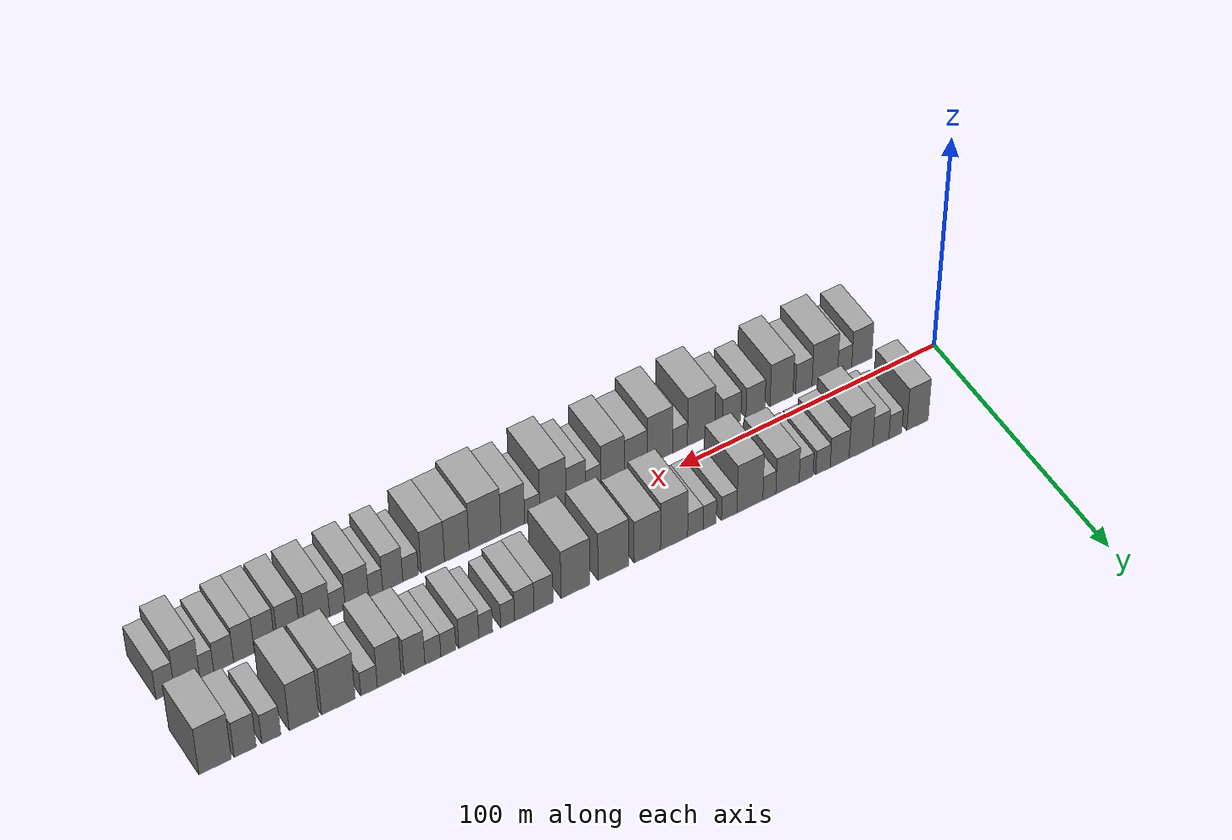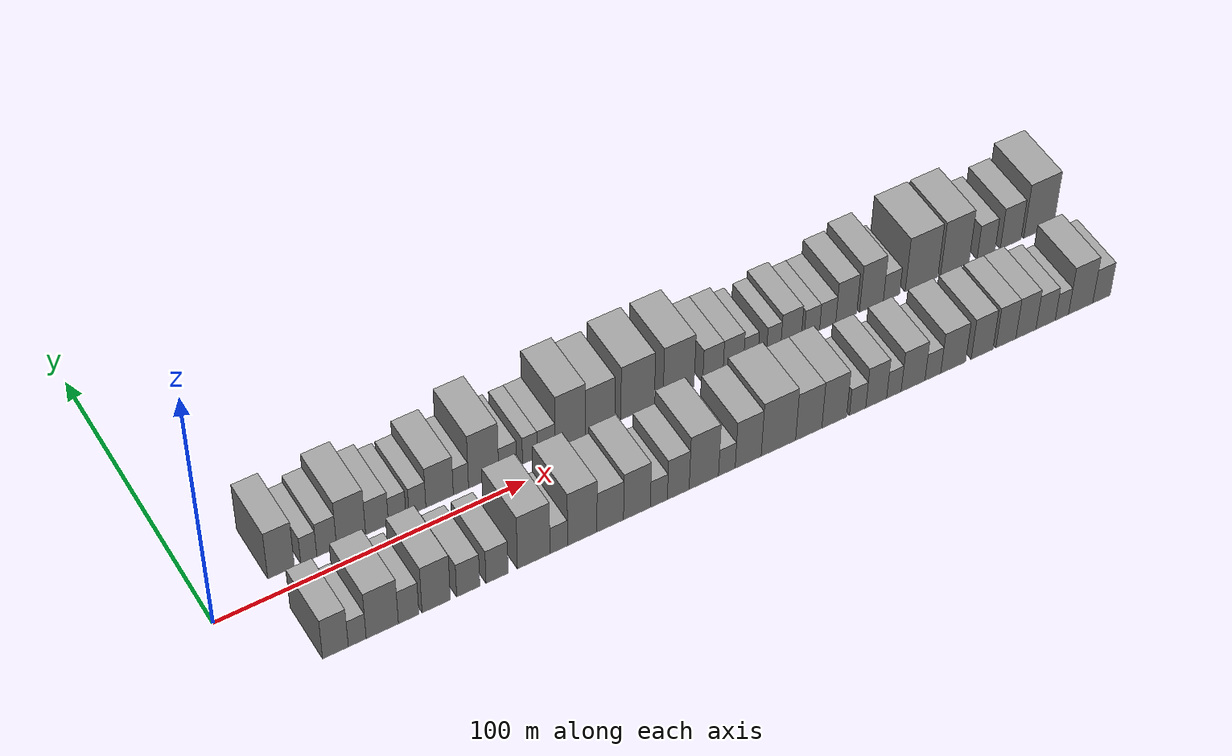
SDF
<sdf version="1.6">
 <world name="default">
  <scene>
   <sky><clouds><speed>12</speed></clouds></sky>
   <ambient>0.4 0.4 0.4 1</ambient>
   <background>0.7 0.7 0.7 1</background>
   <shadows>1</shadows>
  </scene>
  <gravity>0 0 -9.8066</gravity>
  <magnetic_field>6e-06 2.3e-05 -4.2e-05</magnetic_field>
  <physics default="0" name="default_physics" type="ode">
   <ode>
    <solver>
     <type>quick</type>
     <iters>10</iters>
     <sor>1.0</sor>
     <use_dynamic_moi_rescaling>0</use_dynamic_moi_rescaling>
    </solver>
    <constraints>
     <cfm>0</cfm>
     <erp>0.2</erp>
     <contact_max_correcting_vel>100</contact_max_correcting_vel>
     <contact_surface_layer>0.001</contact_surface_layer>
    </constraints>
   </ode>
   <max_step_size>0.004</max_step_size>
   <real_time_factor>1</real_time_factor>
   <real_time_update_rate>250</real_time_update_rate>
  </physics>
  <light name="sun" type="directional">
   <pose>0 0 10 0 0 0</pose>
   <diffuse>0.8 0.8 0.8 1</diffuse>
   <specular>0.2 0.2 0.2 1</specular>
   <attenuation>
    <range>1000</range>
    <constant>0.9</constant>
    <linear>0.01</linear>
    <quadratic>0.001</quadratic>
   </attenuation>
   <direction>-0.5 0.1 -0.9</direction>
  </light>
  <model name="building_1">
   <static>1</static>
   <pose>24.2161 16.0000 0 0.000000 0.000000 1.570796</pose>
   <link name="link">
    <pose>0 0 10.50 0 0 0</pose>
    <collision name="collision"><geometry><box><size>20.0000 8.4322 21.0000</size></box></geometry></collision>
    <visual name="visual">
     <cast_shadows>0</cast_shadows>
     <geometry><box><size>20.0000 8.4322 21.0000</size></box></geometry>
     <material>
      <script>
       <uri>model://grey_wall/materials/scripts</uri>
       <uri>model://grey_wall/materials/textures</uri>
       <name>vrc/grey_wall</name>
      </script>
     </material>
    </visual>
   </link>
  </model>
  <model name="building_2">
   <static>1</static>
   <pose>32.9692 16.0000 0 0.000000 0.000000 1.570796</pose>
   <link name="link">
    <pose>0 0 6.00 0 0 0</pose>
    <collision name="collision"><geometry><box><size>20.0000 5.0739 12.0000</size></box></geometry></collision>
    <visual name="visual">
     <cast_shadows>0</cast_shadows>
     <geometry><box><size>20.0000 5.0739 12.0000</size></box></geometry>
     <material>
      <script>
       <uri>model://grey_wall/materials/scripts</uri>
       <uri>model://grey_wall/materials/textures</uri>
       <name>vrc/grey_wall</name>
      </script>
     </material>
    </visual>
   </link>
  </model>
  <model name="building_3">
   <static>1</static>
   <pose>38.6626 16.0000 0 0.000000 0.000000 1.570796</pose>
   <link name="link">
    <pose>0 0 7.50 0 0 0</pose>
    <collision name="collision"><geometry><box><size>20.0000 6.3130 15.0000</size></box></geometry></collision>
    <visual name="visual">
     <cast_shadows>0</cast_shadows>
     <geometry><box><size>20.0000 6.3130 15.0000</size></box></geometry>
     <material>
      <script>
       <uri>model://grey_wall/materials/scripts</uri>
       <uri>model://grey_wall/materials/textures</uri>
       <name>vrc/grey_wall</name>
      </script>
     </material>
    </visual>
   </link>
  </model>
  <model name="building_4">
   <static>1</static>
   <pose>46.4563 16.0000 0 0.000000 0.000000 1.570796</pose>
   <link name="link">
    <pose>0 0 10.50 0 0 0</pose>
    <collision name="collision"><geometry><box><size>20.0000 9.2744 21.0000</size></box></geometry></collision>
    <visual name="visual">
     <cast_shadows>0</cast_shadows>
     <geometry><box><size>20.0000 9.2744 21.0000</size></box></geometry>
     <material>
      <script>
       <uri>model://grey_wall/materials/scripts</uri>
       <uri>model://grey_wall/materials/textures</uri>
       <name>vrc/grey_wall</name>
      </script>
     </material>
    </visual>
   </link>
  </model>
  <model name="building_5">
   <static>1</static>
   <pose>54.7724 16.0000 0 0.000000 0.000000 1.570796</pose>
   <link name="link">
    <pose>0 0 7.50 0 0 0</pose>
    <collision name="collision"><geometry><box><size>20.0000 7.3577 15.0000</size></box></geometry></collision>
    <visual name="visual">
     <cast_shadows>0</cast_shadows>
     <geometry><box><size>20.0000 7.3577 15.0000</size></box></geometry>
     <material>
      <script>
       <uri>model://grey_wall/materials/scripts</uri>
       <uri>model://grey_wall/materials/textures</uri>
       <name>vrc/grey_wall</name>
      </script>
     </material>
    </visual>
   </link>
  </model>
  <model name="building_6">
   <static>1</static>
   <pose>61.2709 16.0000 0 0.000000 0.000000 1.570796</pose>
   <link name="link">
    <pose>0 0 6.00 0 0 0</pose>
    <collision name="collision"><geometry><box><size>20.0000 5.6394 12.0000</size></box></geometry></collision>
    <visual name="visual">
     <cast_shadows>0</cast_shadows>
     <geometry><box><size>20.0000 5.6394 12.0000</size></box></geometry>
     <material>
      <script>
       <uri>model://grey_wall/materials/scripts</uri>
       <uri>model://grey_wall/materials/textures</uri>
       <name>vrc/grey_wall</name>
      </script>
     </material>
    </visual>
   </link>
  </model>
  <model name="building_7">
   <static>1</static>
   <pose>67.8159 16.0000 0 0.000000 0.000000 1.570796</pose>
   <link name="link">
    <pose>0 0 6.00 0 0 0</pose>
    <collision name="collision"><geometry><box><size>20.0000 5.4505 12.0000</size></box></geometry></collision>
    <visual name="visual">
     <cast_shadows>0</cast_shadows>
     <geometry><box><size>20.0000 5.4505 12.0000</size></box></geometry>
     <material>
      <script>
       <uri>model://grey_wall/materials/scripts</uri>
       <uri>model://grey_wall/materials/textures</uri>
       <name>vrc/grey_wall</name>
      </script>
     </material>
    </visual>
   </link>
  </model>
  <model name="building_8">
   <static>1</static>
   <pose>75.0235 16.0000 0 0.000000 0.000000 1.570796</pose>
   <link name="link">
    <pose>0 0 9.00 0 0 0</pose>
    <collision name="collision"><geometry><box><size>20.0000 8.9648 18.0000</size></box></geometry></collision>
    <visual name="visual">
     <cast_shadows>0</cast_shadows>
     <geometry><box><size>20.0000 8.9648 18.0000</size></box></geometry>
     <material>
      <script>
       <uri>model://grey_wall/materials/scripts</uri>
       <uri>model://grey_wall/materials/textures</uri>
       <name>vrc/grey_wall</name>
      </script>
     </material>
    </visual>
   </link>
  </model>
  <model name="building_9">
   <static>1</static>
   <pose>82.0017 16.0000 0 0.000000 0.000000 1.570796</pose>
   <link name="link">
    <pose>0 0 6.00 0 0 0</pose>
    <collision name="collision"><geometry><box><size>20.0000 4.9915 12.0000</size></box></geometry></collision>
    <visual name="visual">
     <cast_shadows>0</cast_shadows>
     <geometry><box><size>20.0000 4.9915 12.0000</size></box></geometry>
     <material>
      <script>
       <uri>model://grey_wall/materials/scripts</uri>
       <uri>model://grey_wall/materials/textures</uri>
       <name>vrc/grey_wall</name>
      </script>
     </material>
    </visual>
   </link>
  </model>
  <model name="building_10">
   <static>1</static>
   <pose>89.4629 16.0000 0 0.000000 0.000000 1.570796</pose>
   <link name="link">
    <pose>0 0 12.00 0 0 0</pose>
    <collision name="collision"><geometry><box><size>20.0000 9.9310 24.0000</size></box></geometry></collision>
    <visual name="visual">
     <cast_shadows>0</cast_shadows>
     <geometry><box><size>20.0000 9.9310 24.0000</size></box></geometry>
     <material>
      <script>
       <uri>model://grey_wall/materials/scripts</uri>
       <uri>model://grey_wall/materials/textures</uri>
       <name>vrc/grey_wall</name>
      </script>
     </material>
    </visual>
   </link>
  </model>
  <model name="building_11">
   <static>1</static>
   <pose>97.3649 16.0000 0 0.000000 0.000000 1.570796</pose>
   <link name="link">
    <pose>0 0 6.00 0 0 0</pose>
    <collision name="collision"><geometry><box><size>20.0000 5.8729 12.0000</size></box></geometry></collision>
    <visual name="visual">
     <cast_shadows>0</cast_shadows>
     <geometry><box><size>20.0000 5.8729 12.0000</size></box></geometry>
     <material>
      <script>
       <uri>model://grey_wall/materials/scripts</uri>
       <uri>model://grey_wall/materials/textures</uri>
       <name>vrc/grey_wall</name>
      </script>
     </material>
    </visual>
   </link>
  </model>
  <model name="building_12">
   <static>1</static>
   <pose>104.7525 16.0000 0 0.000000 0.000000 1.570796</pose>
   <link name="link">
    <pose>0 0 6.00 0 0 0</pose>
    <collision name="collision"><geometry><box><size>20.0000 4.9022 12.0000</size></box></geometry></collision>
    <visual name="visual">
     <cast_shadows>0</cast_shadows>
     <geometry><box><size>20.0000 4.9022 12.0000</size></box></geometry>
     <material>
      <script>
       <uri>model://grey_wall/materials/scripts</uri>
       <uri>model://grey_wall/materials/textures</uri>
       <name>vrc/grey_wall</name>
      </script>
     </material>
    </visual>
   </link>
  </model>
  <model name="building_13">
   <static>1</static>
   <pose>110.1874 16.0000 0 0.000000 0.000000 1.570796</pose>
   <link name="link">
    <pose>0 0 6.00 0 0 0</pose>
    <collision name="collision"><geometry><box><size>20.0000 5.9677 12.0000</size></box></geometry></collision>
    <visual name="visual">
     <cast_shadows>0</cast_shadows>
     <geometry><box><size>20.0000 5.9677 12.0000</size></box></geometry>
     <material>
      <script>
       <uri>model://grey_wall/materials/scripts</uri>
       <uri>model://grey_wall/materials/textures</uri>
       <name>vrc/grey_wall</name>
      </script>
     </material>
    </visual>
   </link>
  </model>
  <model name="building_14">
   <static>1</static>
   <pose>118.2774 16.0000 0 0.000000 0.000000 1.570796</pose>
   <link name="link">
    <pose>0 0 12.00 0 0 0</pose>
    <collision name="collision"><geometry><box><size>20.0000 10.2123 24.0000</size></box></geometry></collision>
    <visual name="visual">
     <cast_shadows>0</cast_shadows>
     <geometry><box><size>20.0000 10.2123 24.0000</size></box></geometry>
     <material>
      <script>
       <uri>model://grey_wall/materials/scripts</uri>
       <uri>model://grey_wall/materials/textures</uri>
       <name>vrc/grey_wall</name>
      </script>
     </material>
    </visual>
   </link>
  </model>
  <model name="building_15">
   <static>1</static>
   <pose>128.3122 16.0000 0 0.000000 0.000000 1.570796</pose>
   <link name="link">
    <pose>0 0 10.50 0 0 0</pose>
    <collision name="collision"><geometry><box><size>20.0000 9.8573 21.0000</size></box></geometry></collision>
    <visual name="visual">
     <cast_shadows>0</cast_shadows>
     <geometry><box><size>20.0000 9.8573 21.0000</size></box></geometry>
     <material>
      <script>
       <uri>model://grey_wall/materials/scripts</uri>
       <uri>model://grey_wall/materials/textures</uri>
       <name>vrc/grey_wall</name>
      </script>
     </material>
    </visual>
   </link>
  </model>
  <model name="building_16">
   <static>1</static>
   <pose>140.9655 16.0000 0 0.000000 0.000000 1.570796</pose>
   <link name="link">
    <pose>0 0 12.00 0 0 0</pose>
    <collision name="collision"><geometry><box><size>20.0000 11.4492 24.0000</size></box></geometry></collision>
    <visual name="visual">
     <cast_shadows>0</cast_shadows>
     <geometry><box><size>20.0000 11.4492 24.0000</size></box></geometry>
     <material>
      <script>
       <uri>model://grey_wall/materials/scripts</uri>
       <uri>model://grey_wall/materials/textures</uri>
       <name>vrc/grey_wall</name>
      </script>
     </material>
    </visual>
   </link>
  </model>
  <model name="building_17">
   <static>1</static>
   <pose>155.0265 16.0000 0 0.000000 0.000000 1.570796</pose>
   <link name="link">
    <pose>0 0 12.00 0 0 0</pose>
    <collision name="collision"><geometry><box><size>20.0000 10.6728 24.0000</size></box></geometry></collision>
    <visual name="visual">
     <cast_shadows>0</cast_shadows>
     <geometry><box><size>20.0000 10.6728 24.0000</size></box></geometry>
     <material>
      <script>
       <uri>model://grey_wall/materials/scripts</uri>
       <uri>model://grey_wall/materials/textures</uri>
       <name>vrc/grey_wall</name>
      </script>
     </material>
    </visual>
   </link>
  </model>
  <model name="building_18">
   <static>1</static>
   <pose>166.8711 16.0000 0 0.000000 0.000000 1.570796</pose>
   <link name="link">
    <pose>0 0 7.50 0 0 0</pose>
    <collision name="collision"><geometry><box><size>20.0000 7.0164 15.0000</size></box></geometry></collision>
    <visual name="visual">
     <cast_shadows>0</cast_shadows>
     <geometry><box><size>20.0000 7.0164 15.0000</size></box></geometry>
     <material>
      <script>
       <uri>model://grey_wall/materials/scripts</uri>
       <uri>model://grey_wall/materials/textures</uri>
       <name>vrc/grey_wall</name>
      </script>
     </material>
    </visual>
   </link>
  </model>
  <model name="building_19">
   <static>1</static>
   <pose>173.9397 16.0000 0 0.000000 0.000000 1.570796</pose>
   <link name="link">
    <pose>0 0 7.50 0 0 0</pose>
    <collision name="collision"><geometry><box><size>20.0000 7.1207 15.0000</size></box></geometry></collision>
    <visual name="visual">
     <cast_shadows>0</cast_shadows>
     <geometry><box><size>20.0000 7.1207 15.0000</size></box></geometry>
     <material>
      <script>
       <uri>model://grey_wall/materials/scripts</uri>
       <uri>model://grey_wall/materials/textures</uri>
       <name>vrc/grey_wall</name>
      </script>
     </material>
    </visual>
   </link>
  </model>
  <model name="building_20">
   <static>1</static>
   <pose>180.0243 16.0000 0 0.000000 0.000000 1.570796</pose>
   <link name="link">
    <pose>0 0 6.00 0 0 0</pose>
    <collision name="collision"><geometry><box><size>20.0000 5.0486 12.0000</size></box></geometry></collision>
    <visual name="visual">
     <cast_shadows>0</cast_shadows>
     <geometry><box><size>20.0000 5.0486 12.0000</size></box></geometry>
     <material>
      <script>
       <uri>model://grey_wall/materials/scripts</uri>
       <uri>model://grey_wall/materials/textures</uri>
       <name>vrc/grey_wall</name>
      </script>
     </material>
    </visual>
   </link>
  </model>
  <model name="building_21">
   <static>1</static>
   <pose>188.0584 16.0000 0 0.000000 0.000000 1.570796</pose>
   <link name="link">
    <pose>0 0 6.00 0 0 0</pose>
    <collision name="collision"><geometry><box><size>20.0000 5.0195 12.0000</size></box></geometry></collision>
    <visual name="visual">
     <cast_shadows>0</cast_shadows>
     <geometry><box><size>20.0000 5.0195 12.0000</size></box></geometry>
     <material>
      <script>
       <uri>model://grey_wall/materials/scripts</uri>
       <uri>model://grey_wall/materials/textures</uri>
       <name>vrc/grey_wall</name>
      </script>
     </material>
    </visual>
   </link>
  </model>
  <model name="building_22">
   <static>1</static>
   <pose>194.2041 16.0000 0 0.000000 0.000000 1.570796</pose>
   <link name="link">
    <pose>0 0 7.50 0 0 0</pose>
    <collision name="collision"><geometry><box><size>20.0000 7.2721 15.0000</size></box></geometry></collision>
    <visual name="visual">
     <cast_shadows>0</cast_shadows>
     <geometry><box><size>20.0000 7.2721 15.0000</size></box></geometry>
     <material>
      <script>
       <uri>model://grey_wall/materials/scripts</uri>
       <uri>model://grey_wall/materials/textures</uri>
       <name>vrc/grey_wall</name>
      </script>
     </material>
    </visual>
   </link>
  </model>
  <model name="building_23">
   <static>1</static>
   <pose>201.5783 16.0000 0 0.000000 0.000000 1.570796</pose>
   <link name="link">
    <pose>0 0 6.00 0 0 0</pose>
    <collision name="collision"><geometry><box><size>20.0000 5.4761 12.0000</size></box></geometry></collision>
    <visual name="visual">
     <cast_shadows>0</cast_shadows>
     <geometry><box><size>20.0000 5.4761 12.0000</size></box></geometry>
     <material>
      <script>
       <uri>model://grey_wall/materials/scripts</uri>
       <uri>model://grey_wall/materials/textures</uri>
       <name>vrc/grey_wall</name>
      </script>
     </material>
    </visual>
   </link>
  </model>
  <model name="building_24">
   <static>1</static>
   <pose>207.1888 16.0000 0 0.000000 0.000000 1.570796</pose>
   <link name="link">
    <pose>0 0 6.00 0 0 0</pose>
    <collision name="collision"><geometry><box><size>20.0000 5.7449 12.0000</size></box></geometry></collision>
    <visual name="visual">
     <cast_shadows>0</cast_shadows>
     <geometry><box><size>20.0000 5.7449 12.0000</size></box></geometry>
     <material>
      <script>
       <uri>model://grey_wall/materials/scripts</uri>
       <uri>model://grey_wall/materials/textures</uri>
       <name>vrc/grey_wall</name>
      </script>
     </material>
    </visual>
   </link>
  </model>
  <model name="building_25">
   <static>1</static>
   <pose>213.8096 16.0000 0 0.000000 0.000000 1.570796</pose>
   <link name="link">
    <pose>0 0 9.00 0 0 0</pose>
    <collision name="collision"><geometry><box><size>20.0000 7.4967 18.0000</size></box></geometry></collision>
    <visual name="visual">
     <cast_shadows>0</cast_shadows>
     <geometry><box><size>20.0000 7.4967 18.0000</size></box></geometry>
     <material>
      <script>
       <uri>model://grey_wall/materials/scripts</uri>
       <uri>model://grey_wall/materials/textures</uri>
       <name>vrc/grey_wall</name>
      </script>
     </material>
    </visual>
   </link>
  </model>
  <model name="building_26">
   <static>1</static>
   <pose>222.8315 16.0000 0 0.000000 0.000000 1.570796</pose>
   <link name="link">
    <pose>0 0 10.50 0 0 0</pose>
    <collision name="collision"><geometry><box><size>20.0000 8.5472 21.0000</size></box></geometry></collision>
    <visual name="visual">
     <cast_shadows>0</cast_shadows>
     <geometry><box><size>20.0000 8.5472 21.0000</size></box></geometry>
     <material>
      <script>
       <uri>model://grey_wall/materials/scripts</uri>
       <uri>model://grey_wall/materials/textures</uri>
       <name>vrc/grey_wall</name>
      </script>
     </material>
    </visual>
   </link>
  </model>
  <model name="building_27">
   <static>1</static>
   <pose>230.0566 16.0000 0 0.000000 0.000000 1.570796</pose>
   <link name="link">
    <pose>0 0 6.00 0 0 0</pose>
    <collision name="collision"><geometry><box><size>20.0000 5.9030 12.0000</size></box></geometry></collision>
    <visual name="visual">
     <cast_shadows>0</cast_shadows>
     <geometry><box><size>20.0000 5.9030 12.0000</size></box></geometry>
     <material>
      <script>
       <uri>model://grey_wall/materials/scripts</uri>
       <uri>model://grey_wall/materials/textures</uri>
       <name>vrc/grey_wall</name>
      </script>
     </material>
    </visual>
   </link>
  </model>
  <model name="building_28">
   <static>1</static>
   <pose>240.9556 16.0000 0 0.000000 0.000000 1.570796</pose>
   <link name="link">
    <pose>0 0 12.00 0 0 0</pose>
    <collision name="collision"><geometry><box><size>20.0000 11.8950 24.0000</size></box></geometry></collision>
    <visual name="visual">
     <cast_shadows>0</cast_shadows>
     <geometry><box><size>20.0000 11.8950 24.0000</size></box></geometry>
     <material>
      <script>
       <uri>model://grey_wall/materials/scripts</uri>
       <uri>model://grey_wall/materials/textures</uri>
       <name>vrc/grey_wall</name>
      </script>
     </material>
    </visual>
   </link>
  </model>
  <model name="building_29">
   <static>1</static>
   <pose>253.0894 16.0000 0 0.000000 0.000000 1.570796</pose>
   <link name="link">
    <pose>0 0 12.00 0 0 0</pose>
    <collision name="collision"><geometry><box><size>20.0000 10.3726 24.0000</size></box></geometry></collision>
    <visual name="visual">
     <cast_shadows>0</cast_shadows>
     <geometry><box><size>20.0000 10.3726 24.0000</size></box></geometry>
     <material>
      <script>
       <uri>model://grey_wall/materials/scripts</uri>
       <uri>model://grey_wall/materials/textures</uri>
       <name>vrc/grey_wall</name>
      </script>
     </material>
    </visual>
   </link>
  </model>
  <model name="building_30">
   <static>1</static>
   <pose>264.5663 16.0000 0 0.000000 0.000000 1.570796</pose>
   <link name="link">
    <pose>0 0 7.50 0 0 0</pose>
    <collision name="collision"><geometry><box><size>20.0000 6.5811 15.0000</size></box></geometry></collision>
    <visual name="visual">
     <cast_shadows>0</cast_shadows>
     <geometry><box><size>20.0000 6.5811 15.0000</size></box></geometry>
     <material>
      <script>
       <uri>model://grey_wall/materials/scripts</uri>
       <uri>model://grey_wall/materials/textures</uri>
       <name>vrc/grey_wall</name>
      </script>
     </material>
    </visual>
   </link>
  </model>
  <model name="building_31">
   <static>1</static>
   <pose>273.6921 16.0000 0 0.000000 0.000000 1.570796</pose>
   <link name="link">
    <pose>0 0 9.00 0 0 0</pose>
    <collision name="collision"><geometry><box><size>20.0000 7.6704 18.0000</size></box></geometry></collision>
    <visual name="visual">
     <cast_shadows>0</cast_shadows>
     <geometry><box><size>20.0000 7.6704 18.0000</size></box></geometry>
     <material>
      <script>
       <uri>model://grey_wall/materials/scripts</uri>
       <uri>model://grey_wall/materials/textures</uri>
       <name>vrc/grey_wall</name>
      </script>
     </material>
    </visual>
   </link>
  </model>
  <model name="building_32">
   <static>1</static>
   <pose>284.1521 16.0000 0 0.000000 0.000000 1.570796</pose>
   <link name="link">
    <pose>0 0 12.00 0 0 0</pose>
    <collision name="collision"><geometry><box><size>20.0000 11.2497 24.0000</size></box></geometry></collision>
    <visual name="visual">
     <cast_shadows>0</cast_shadows>
     <geometry><box><size>20.0000 11.2497 24.0000</size></box></geometry>
     <material>
      <script>
       <uri>model://grey_wall/materials/scripts</uri>
       <uri>model://grey_wall/materials/textures</uri>
       <name>vrc/grey_wall</name>
      </script>
     </material>
    </visual>
   </link>
  </model>
  <model name="building_33">
   <static>1</static>
   <pose>25.0130 -16.0000 0 0.000000 0.000000 1.570796</pose>
   <link name="link">
    <pose>0 0 9.00 0 0 0</pose>
    <collision name="collision"><geometry><box><size>20.0000 8.0260 18.0000</size></box></geometry></collision>
    <visual name="visual">
     <cast_shadows>0</cast_shadows>
     <geometry><box><size>20.0000 8.0260 18.0000</size></box></geometry>
     <material>
      <script>
       <uri>model://grey_wall/materials/scripts</uri>
       <uri>model://grey_wall/materials/textures</uri>
       <name>vrc/grey_wall</name>
      </script>
     </material>
    </visual>
   </link>
  </model>
  <model name="building_34">
   <static>1</static>
   <pose>31.8116 -16.0000 0 0.000000 0.000000 1.570796</pose>
   <link name="link">
    <pose>0 0 6.00 0 0 0</pose>
    <collision name="collision"><geometry><box><size>20.0000 5.5711 12.0000</size></box></geometry></collision>
    <visual name="visual">
     <cast_shadows>0</cast_shadows>
     <geometry><box><size>20.0000 5.5711 12.0000</size></box></geometry>
     <material>
      <script>
       <uri>model://grey_wall/materials/scripts</uri>
       <uri>model://grey_wall/materials/textures</uri>
       <name>vrc/grey_wall</name>
      </script>
     </material>
    </visual>
   </link>
  </model>
  <model name="building_35">
   <static>1</static>
   <pose>39.6670 -16.0000 0 0.000000 0.000000 1.570796</pose>
   <link name="link">
    <pose>0 0 10.50 0 0 0</pose>
    <collision name="collision"><geometry><box><size>20.0000 10.1397 21.0000</size></box></geometry></collision>
    <visual name="visual">
     <cast_shadows>0</cast_shadows>
     <geometry><box><size>20.0000 10.1397 21.0000</size></box></geometry>
     <material>
      <script>
       <uri>model://grey_wall/materials/scripts</uri>
       <uri>model://grey_wall/materials/textures</uri>
       <name>vrc/grey_wall</name>
      </script>
     </material>
    </visual>
   </link>
  </model>
  <model name="building_36">
   <static>1</static>
   <pose>47.9755 -16.0000 0 0.000000 0.000000 1.570796</pose>
   <link name="link">
    <pose>0 0 7.50 0 0 0</pose>
    <collision name="collision"><geometry><box><size>20.0000 6.4773 15.0000</size></box></geometry></collision>
    <visual name="visual">
     <cast_shadows>0</cast_shadows>
     <geometry><box><size>20.0000 6.4773 15.0000</size></box></geometry>
     <material>
      <script>
       <uri>model://grey_wall/materials/scripts</uri>
       <uri>model://grey_wall/materials/textures</uri>
       <name>vrc/grey_wall</name>
      </script>
     </material>
    </visual>
   </link>
  </model>
  <model name="building_37">
   <static>1</static>
   <pose>56.7208 -16.0000 0 0.000000 0.000000 1.570796</pose>
   <link name="link">
    <pose>0 0 10.50 0 0 0</pose>
    <collision name="collision"><geometry><box><size>20.0000 9.0133 21.0000</size></box></geometry></collision>
    <visual name="visual">
     <cast_shadows>0</cast_shadows>
     <geometry><box><size>20.0000 9.0133 21.0000</size></box></geometry>
     <material>
      <script>
       <uri>model://grey_wall/materials/scripts</uri>
       <uri>model://grey_wall/materials/textures</uri>
       <name>vrc/grey_wall</name>
      </script>
     </material>
    </visual>
   </link>
  </model>
  <model name="building_38">
   <static>1</static>
   <pose>66.9238 -16.0000 0 0.000000 0.000000 1.570796</pose>
   <link name="link">
    <pose>0 0 7.50 0 0 0</pose>
    <collision name="collision"><geometry><box><size>20.0000 7.3926 15.0000</size></box></geometry></collision>
    <visual name="visual">
     <cast_shadows>0</cast_shadows>
     <geometry><box><size>20.0000 7.3926 15.0000</size></box></geometry>
     <material>
      <script>
       <uri>model://grey_wall/materials/scripts</uri>
       <uri>model://grey_wall/materials/textures</uri>
       <name>vrc/grey_wall</name>
      </script>
     </material>
    </visual>
   </link>
  </model>
  <model name="building_39">
   <static>1</static>
   <pose>76.1817 -16.0000 0 0.000000 0.000000 1.570796</pose>
   <link name="link">
    <pose>0 0 7.50 0 0 0</pose>
    <collision name="collision"><geometry><box><size>20.0000 7.1232 15.0000</size></box></geometry></collision>
    <visual name="visual">
     <cast_shadows>0</cast_shadows>
     <geometry><box><size>20.0000 7.1232 15.0000</size></box></geometry>
     <material>
      <script>
       <uri>model://grey_wall/materials/scripts</uri>
       <uri>model://grey_wall/materials/textures</uri>
       <name>vrc/grey_wall</name>
      </script>
     </material>
    </visual>
   </link>
  </model>
  <model name="building_40">
   <static>1</static>
   <pose>88.0166 -16.0000 0 0.000000 0.000000 1.570796</pose>
   <link name="link">
    <pose>0 0 12.00 0 0 0</pose>
    <collision name="collision"><geometry><box><size>20.0000 10.5466 24.0000</size></box></geometry></collision>
    <visual name="visual">
     <cast_shadows>0</cast_shadows>
     <geometry><box><size>20.0000 10.5466 24.0000</size></box></geometry>
     <material>
      <script>
       <uri>model://grey_wall/materials/scripts</uri>
       <uri>model://grey_wall/materials/textures</uri>
       <name>vrc/grey_wall</name>
      </script>
     </material>
    </visual>
   </link>
  </model>
  <model name="building_41">
   <static>1</static>
   <pose>96.1535 -16.0000 0 0.000000 0.000000 1.570796</pose>
   <link name="link">
    <pose>0 0 6.00 0 0 0</pose>
    <collision name="collision"><geometry><box><size>20.0000 5.7273 12.0000</size></box></geometry></collision>
    <visual name="visual">
     <cast_shadows>0</cast_shadows>
     <geometry><box><size>20.0000 5.7273 12.0000</size></box></geometry>
     <material>
      <script>
       <uri>model://grey_wall/materials/scripts</uri>
       <uri>model://grey_wall/materials/textures</uri>
       <name>vrc/grey_wall</name>
      </script>
     </material>
    </visual>
   </link>
  </model>
  <model name="building_42">
   <static>1</static>
   <pose>103.8464 -16.0000 0 0.000000 0.000000 1.570796</pose>
   <link name="link">
    <pose>0 0 12.00 0 0 0</pose>
    <collision name="collision"><geometry><box><size>20.0000 9.6585 24.0000</size></box></geometry></collision>
    <visual name="visual">
     <cast_shadows>0</cast_shadows>
     <geometry><box><size>20.0000 9.6585 24.0000</size></box></geometry>
     <material>
      <script>
       <uri>model://grey_wall/materials/scripts</uri>
       <uri>model://grey_wall/materials/textures</uri>
       <name>vrc/grey_wall</name>
      </script>
     </material>
    </visual>
   </link>
  </model>
  <model name="building_43">
   <static>1</static>
   <pose>113.0781 -16.0000 0 0.000000 0.000000 1.570796</pose>
   <link name="link">
    <pose>0 0 9.00 0 0 0</pose>
    <collision name="collision"><geometry><box><size>20.0000 8.8050 18.0000</size></box></geometry></collision>
    <visual name="visual">
     <cast_shadows>0</cast_shadows>
     <geometry><box><size>20.0000 8.8050 18.0000</size></box></geometry>
     <material>
      <script>
       <uri>model://grey_wall/materials/scripts</uri>
       <uri>model://grey_wall/materials/textures</uri>
       <name>vrc/grey_wall</name>
      </script>
     </material>
    </visual>
   </link>
  </model>
  <model name="building_44">
   <static>1</static>
   <pose>121.9330 -16.0000 0 0.000000 0.000000 1.570796</pose>
   <link name="link">
    <pose>0 0 10.50 0 0 0</pose>
    <collision name="collision"><geometry><box><size>20.0000 8.9048 21.0000</size></box></geometry></collision>
    <visual name="visual">
     <cast_shadows>0</cast_shadows>
     <geometry><box><size>20.0000 8.9048 21.0000</size></box></geometry>
     <material>
      <script>
       <uri>model://grey_wall/materials/scripts</uri>
       <uri>model://grey_wall/materials/textures</uri>
       <name>vrc/grey_wall</name>
      </script>
     </material>
    </visual>
   </link>
  </model>
  <model name="building_45">
   <static>1</static>
   <pose>129.2344 -16.0000 0 0.000000 0.000000 1.570796</pose>
   <link name="link">
    <pose>0 0 6.00 0 0 0</pose>
    <collision name="collision"><geometry><box><size>20.0000 5.6980 12.0000</size></box></geometry></collision>
    <visual name="visual">
     <cast_shadows>0</cast_shadows>
     <geometry><box><size>20.0000 5.6980 12.0000</size></box></geometry>
     <material>
      <script>
       <uri>model://grey_wall/materials/scripts</uri>
       <uri>model://grey_wall/materials/textures</uri>
       <name>vrc/grey_wall</name>
      </script>
     </material>
    </visual>
   </link>
  </model>
  <model name="building_46">
   <static>1</static>
   <pose>135.7391 -16.0000 0 0.000000 0.000000 1.570796</pose>
   <link name="link">
    <pose>0 0 9.00 0 0 0</pose>
    <collision name="collision"><geometry><box><size>20.0000 7.3113 18.0000</size></box></geometry></collision>
    <visual name="visual">
     <cast_shadows>0</cast_shadows>
     <geometry><box><size>20.0000 7.3113 18.0000</size></box></geometry>
     <material>
      <script>
       <uri>model://grey_wall/materials/scripts</uri>
       <uri>model://grey_wall/materials/textures</uri>
       <name>vrc/grey_wall</name>
      </script>
     </material>
    </visual>
   </link>
  </model>
  <model name="building_47">
   <static>1</static>
   <pose>144.3431 -16.0000 0 0.000000 0.000000 1.570796</pose>
   <link name="link">
    <pose>0 0 12.00 0 0 0</pose>
    <collision name="collision"><geometry><box><size>20.0000 9.8968 24.0000</size></box></geometry></collision>
    <visual name="visual">
     <cast_shadows>0</cast_shadows>
     <geometry><box><size>20.0000 9.8968 24.0000</size></box></geometry>
     <material>
      <script>
       <uri>model://grey_wall/materials/scripts</uri>
       <uri>model://grey_wall/materials/textures</uri>
       <name>vrc/grey_wall</name>
      </script>
     </material>
    </visual>
   </link>
  </model>
  <model name="building_48">
   <static>1</static>
   <pose>152.1213 -16.0000 0 0.000000 0.000000 1.570796</pose>
   <link name="link">
    <pose>0 0 6.00 0 0 0</pose>
    <collision name="collision"><geometry><box><size>20.0000 5.6595 12.0000</size></box></geometry></collision>
    <visual name="visual">
     <cast_shadows>0</cast_shadows>
     <geometry><box><size>20.0000 5.6595 12.0000</size></box></geometry>
     <material>
      <script>
       <uri>model://grey_wall/materials/scripts</uri>
       <uri>model://grey_wall/materials/textures</uri>
       <name>vrc/grey_wall</name>
      </script>
     </material>
    </visual>
   </link>
  </model>
  <model name="building_49">
   <static>1</static>
   <pose>159.3857 -16.0000 0 0.000000 0.000000 1.570796</pose>
   <link name="link">
    <pose>0 0 10.50 0 0 0</pose>
    <collision name="collision"><geometry><box><size>20.0000 8.8694 21.0000</size></box></geometry></collision>
    <visual name="visual">
     <cast_shadows>0</cast_shadows>
     <geometry><box><size>20.0000 8.8694 21.0000</size></box></geometry>
     <material>
      <script>
       <uri>model://grey_wall/materials/scripts</uri>
       <uri>model://grey_wall/materials/textures</uri>
       <name>vrc/grey_wall</name>
      </script>
     </material>
    </visual>
   </link>
  </model>
  <model name="building_50">
   <static>1</static>
   <pose>169.7252 -16.0000 0 0.000000 0.000000 1.570796</pose>
   <link name="link">
    <pose>0 0 12.00 0 0 0</pose>
    <collision name="collision"><geometry><box><size>20.0000 11.8097 24.0000</size></box></geometry></collision>
    <visual name="visual">
     <cast_shadows>0</cast_shadows>
     <geometry><box><size>20.0000 11.8097 24.0000</size></box></geometry>
     <material>
      <script>
       <uri>model://grey_wall/materials/scripts</uri>
       <uri>model://grey_wall/materials/textures</uri>
       <name>vrc/grey_wall</name>
      </script>
     </material>
    </visual>
   </link>
  </model>
  <model name="building_51">
   <static>1</static>
   <pose>180.1610 -16.0000 0 0.000000 0.000000 1.570796</pose>
   <link name="link">
    <pose>0 0 10.50 0 0 0</pose>
    <collision name="collision"><geometry><box><size>20.0000 9.0619 21.0000</size></box></geometry></collision>
    <visual name="visual">
     <cast_shadows>0</cast_shadows>
     <geometry><box><size>20.0000 9.0619 21.0000</size></box></geometry>
     <material>
      <script>
       <uri>model://grey_wall/materials/scripts</uri>
       <uri>model://grey_wall/materials/textures</uri>
       <name>vrc/grey_wall</name>
      </script>
     </material>
    </visual>
   </link>
  </model>
  <model name="building_52">
   <static>1</static>
   <pose>188.9930 -16.0000 0 0.000000 0.000000 1.570796</pose>
   <link name="link">
    <pose>0 0 10.50 0 0 0</pose>
    <collision name="collision"><geometry><box><size>20.0000 8.6021 21.0000</size></box></geometry></collision>
    <visual name="visual">
     <cast_shadows>0</cast_shadows>
     <geometry><box><size>20.0000 8.6021 21.0000</size></box></geometry>
     <material>
      <script>
       <uri>model://grey_wall/materials/scripts</uri>
       <uri>model://grey_wall/materials/textures</uri>
       <name>vrc/grey_wall</name>
      </script>
     </material>
    </visual>
   </link>
  </model>
  <model name="building_53">
   <static>1</static>
   <pose>197.1399 -16.0000 0 0.000000 0.000000 1.570796</pose>
   <link name="link">
    <pose>0 0 6.00 0 0 0</pose>
    <collision name="collision"><geometry><box><size>20.0000 5.6916 12.0000</size></box></geometry></collision>
    <visual name="visual">
     <cast_shadows>0</cast_shadows>
     <geometry><box><size>20.0000 5.6916 12.0000</size></box></geometry>
     <material>
      <script>
       <uri>model://grey_wall/materials/scripts</uri>
       <uri>model://grey_wall/materials/textures</uri>
       <name>vrc/grey_wall</name>
      </script>
     </material>
    </visual>
   </link>
  </model>
  <model name="building_54">
   <static>1</static>
   <pose>203.6494 -16.0000 0 0.000000 0.000000 1.570796</pose>
   <link name="link">
    <pose>0 0 9.00 0 0 0</pose>
    <collision name="collision"><geometry><box><size>20.0000 7.3275 18.0000</size></box></geometry></collision>
    <visual name="visual">
     <cast_shadows>0</cast_shadows>
     <geometry><box><size>20.0000 7.3275 18.0000</size></box></geometry>
     <material>
      <script>
       <uri>model://grey_wall/materials/scripts</uri>
       <uri>model://grey_wall/materials/textures</uri>
       <name>vrc/grey_wall</name>
      </script>
     </material>
    </visual>
   </link>
  </model>
  <model name="building_55">
   <static>1</static>
   <pose>209.8649 -16.0000 0 0.000000 0.000000 1.570796</pose>
   <link name="link">
    <pose>0 0 6.00 0 0 0</pose>
    <collision name="collision"><geometry><box><size>20.0000 5.1036 12.0000</size></box></geometry></collision>
    <visual name="visual">
     <cast_shadows>0</cast_shadows>
     <geometry><box><size>20.0000 5.1036 12.0000</size></box></geometry>
     <material>
      <script>
       <uri>model://grey_wall/materials/scripts</uri>
       <uri>model://grey_wall/materials/textures</uri>
       <name>vrc/grey_wall</name>
      </script>
     </material>
    </visual>
   </link>
  </model>
  <model name="building_56">
   <static>1</static>
   <pose>216.6293 -16.0000 0 0.000000 0.000000 1.570796</pose>
   <link name="link">
    <pose>0 0 9.00 0 0 0</pose>
    <collision name="collision"><geometry><box><size>20.0000 8.4251 18.0000</size></box></geometry></collision>
    <visual name="visual">
     <cast_shadows>0</cast_shadows>
     <geometry><box><size>20.0000 8.4251 18.0000</size></box></geometry>
     <material>
      <script>
       <uri>model://grey_wall/materials/scripts</uri>
       <uri>model://grey_wall/materials/textures</uri>
       <name>vrc/grey_wall</name>
      </script>
     </material>
    </visual>
   </link>
  </model>
  <model name="building_57">
   <static>1</static>
   <pose>223.6506 -16.0000 0 0.000000 0.000000 1.570796</pose>
   <link name="link">
    <pose>0 0 6.00 0 0 0</pose>
    <collision name="collision"><geometry><box><size>20.0000 5.6175 12.0000</size></box></geometry></collision>
    <visual name="visual">
     <cast_shadows>0</cast_shadows>
     <geometry><box><size>20.0000 5.6175 12.0000</size></box></geometry>
     <material>
      <script>
       <uri>model://grey_wall/materials/scripts</uri>
       <uri>model://grey_wall/materials/textures</uri>
       <name>vrc/grey_wall</name>
      </script>
     </material>
    </visual>
   </link>
  </model>
  <model name="building_58">
   <static>1</static>
   <pose>230.9170 -16.0000 0 0.000000 0.000000 1.570796</pose>
   <link name="link">
    <pose>0 0 9.00 0 0 0</pose>
    <collision name="collision"><geometry><box><size>20.0000 8.9152 18.0000</size></box></geometry></collision>
    <visual name="visual">
     <cast_shadows>0</cast_shadows>
     <geometry><box><size>20.0000 8.9152 18.0000</size></box></geometry>
     <material>
      <script>
       <uri>model://grey_wall/materials/scripts</uri>
       <uri>model://grey_wall/materials/textures</uri>
       <name>vrc/grey_wall</name>
      </script>
     </material>
    </visual>
   </link>
  </model>
  <model name="building_59">
   <static>1</static>
   <pose>241.3000 -16.0000 0 0.000000 0.000000 1.570796</pose>
   <link name="link">
    <pose>0 0 9.00 0 0 0</pose>
    <collision name="collision"><geometry><box><size>20.0000 7.8509 18.0000</size></box></geometry></collision>
    <visual name="visual">
     <cast_shadows>0</cast_shadows>
     <geometry><box><size>20.0000 7.8509 18.0000</size></box></geometry>
     <material>
      <script>
       <uri>model://grey_wall/materials/scripts</uri>
       <uri>model://grey_wall/materials/textures</uri>
       <name>vrc/grey_wall</name>
      </script>
     </material>
    </visual>
   </link>
  </model>
  <model name="building_60">
   <static>1</static>
   <pose>249.8479 -16.0000 0 0.000000 0.000000 1.570796</pose>
   <link name="link">
    <pose>0 0 9.00 0 0 0</pose>
    <collision name="collision"><geometry><box><size>20.0000 7.2447 18.0000</size></box></geometry></collision>
    <visual name="visual">
     <cast_shadows>0</cast_shadows>
     <geometry><box><size>20.0000 7.2447 18.0000</size></box></geometry>
     <material>
      <script>
       <uri>model://grey_wall/materials/scripts</uri>
       <uri>model://grey_wall/materials/textures</uri>
       <name>vrc/grey_wall</name>
      </script>
     </material>
    </visual>
   </link>
  </model>
  <model name="building_61">
   <static>1</static>
   <pose>257.1245 -16.0000 0 0.000000 0.000000 1.570796</pose>
   <link name="link">
    <pose>0 0 9.00 0 0 0</pose>
    <collision name="collision"><geometry><box><size>20.0000 7.3087 18.0000</size></box></geometry></collision>
    <visual name="visual">
     <cast_shadows>0</cast_shadows>
     <geometry><box><size>20.0000 7.3087 18.0000</size></box></geometry>
     <material>
      <script>
       <uri>model://grey_wall/materials/scripts</uri>
       <uri>model://grey_wall/materials/textures</uri>
       <name>vrc/grey_wall</name>
      </script>
     </material>
    </visual>
   </link>
  </model>
  <model name="building_62">
   <static>1</static>
   <pose>264.2841 -16.0000 0 0.000000 0.000000 1.570796</pose>
   <link name="link">
    <pose>0 0 7.50 0 0 0</pose>
    <collision name="collision"><geometry><box><size>20.0000 7.0104 15.0000</size></box></geometry></collision>
    <visual name="visual">
     <cast_shadows>0</cast_shadows>
     <geometry><box><size>20.0000 7.0104 15.0000</size></box></geometry>
     <material>
      <script>
       <uri>model://grey_wall/materials/scripts</uri>
       <uri>model://grey_wall/materials/textures</uri>
       <name>vrc/grey_wall</name>
      </script>
     </material>
    </visual>
   </link>
  </model>
  <model name="building_63">
   <static>1</static>
   <pose>270.2321 -16.0000 0 0.000000 0.000000 1.570796</pose>
   <link name="link">
    <pose>0 0 6.00 0 0 0</pose>
    <collision name="collision"><geometry><box><size>20.0000 4.8855 12.0000</size></box></geometry></collision>
    <visual name="visual">
     <cast_shadows>0</cast_shadows>
     <geometry><box><size>20.0000 4.8855 12.0000</size></box></geometry>
     <material>
      <script>
       <uri>model://grey_wall/materials/scripts</uri>
       <uri>model://grey_wall/materials/textures</uri>
       <name>vrc/grey_wall</name>
      </script>
     </material>
    </visual>
   </link>
  </model>
  <model name="building_64">
   <static>1</static>
   <pose>277.1286 -16.0000 0 0.000000 0.000000 1.570796</pose>
   <link name="link">
    <pose>0 0 10.50 0 0 0</pose>
    <collision name="collision"><geometry><box><size>20.0000 8.9074 21.0000</size></box></geometry></collision>
    <visual name="visual">
     <cast_shadows>0</cast_shadows>
     <geometry><box><size>20.0000 8.9074 21.0000</size></box></geometry>
     <material>
      <script>
       <uri>model://grey_wall/materials/scripts</uri>
       <uri>model://grey_wall/materials/textures</uri>
       <name>vrc/grey_wall</name>
      </script>
     </material>
    </visual>
   </link>
  </model>
  <model name="building_65">
   <static>1</static>
   <pose>284.8036 -16.0000 0 0.000000 0.000000 1.570796</pose>
   <link name="link">
    <pose>0 0 7.50 0 0 0</pose>
    <collision name="collision"><geometry><box><size>20.0000 6.4427 15.0000</size></box></geometry></collision>
    <visual name="visual">
     <cast_shadows>0</cast_shadows>
     <geometry><box><size>20.0000 6.4427 15.0000</size></box></geometry>
     <material>
      <script>
       <uri>model://grey_wall/materials/scripts</uri>
       <uri>model://grey_wall/materials/textures</uri>
       <name>vrc/grey_wall</name>
      </script>
     </material>
    </visual>
   </link>
  </model>
 </world>
</sdf>
